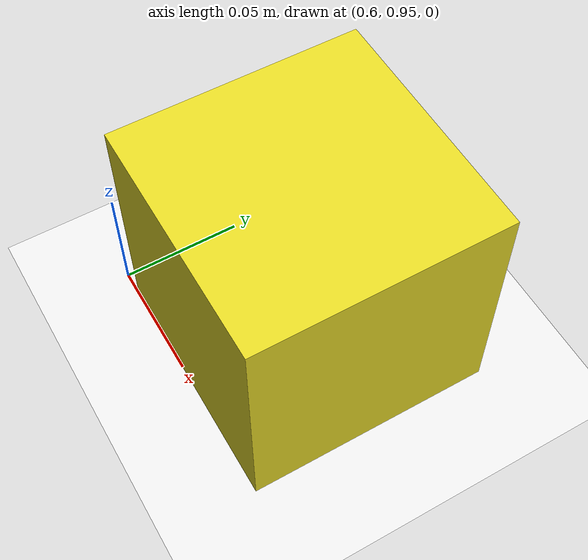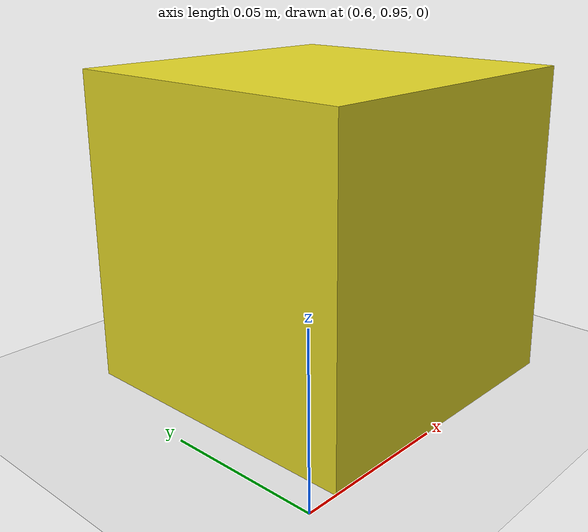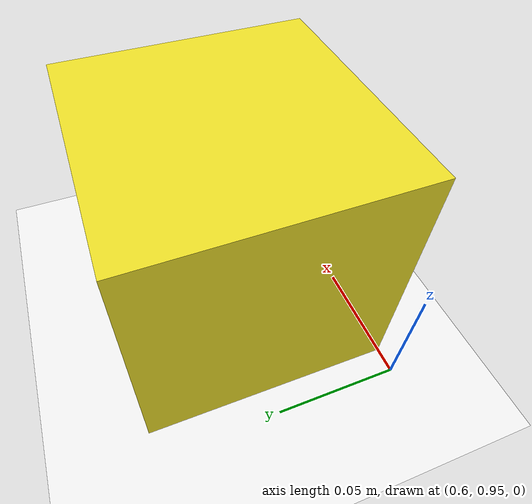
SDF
<?xml version="1.0" ?>
<sdf version="1.4">
  <world name="default">

    <plugin name="gazebo_link_attacher" filename="libgazebo_link_attacher.so"/>

    <!-- Gazebo ROS state plugin -->
    <plugin name="gazebo_ros_state" filename="libgazebo_ros_state.so">
      <ros>
        <namespace>/gazebo</namespace>
      </ros>
      <update_rate>50.0</update_rate>
    </plugin>

    <gravity>0 0 -9.8</gravity>

    <physics default="0" name="default_physics" type="ode">
      <max_step_size>0.01</max_step_size>
      <real_time_factor>1</real_time_factor>
      <real_time_update_rate>100</real_time_update_rate>
    </physics>

    <!-- Ground -->
    <model name="ground_plane">
      <static>true</static>
      <link name="link">
        <collision name="collision">
          <geometry>
            <plane>
              <normal>0 0 1</normal>
              <size>100 100</size>
            </plane>
          </geometry>
        </collision>

        <visual name="visual">
          <geometry>
            <plane>
              <normal>0 0 1</normal>
              <size>100 100</size>
            </plane>
          </geometry>
          <material>
            <script>
              <name>Gazebo/White</name>
              <uri>file://media/materials/scripts/gazebo.material</uri>
            </script>
          </material>
        </visual>
      </link>
    </model>

    <!-- Dynamic yellow cube (0.1m) -->
    <model name="grasp_cube">
      <static>false</static>
      <allow_auto_disable>false</allow_auto_disable>
      <!-- place it above ground so it doesn't interpenetrate -->
      <pose>0.66 1.0 0.05 0 0 0</pose>

      <link name="link">
        <inertial>
          <mass>0.1</mass>
          <!-- I = (1/6)*m*a^2 for a cube, a=0.1 -->
          <inertia>
            <ixx>0.0001666667</ixx>
            <ixy>0</ixy>
            <ixz>0</ixz>
            <iyy>0.0001666667</iyy>
            <iyz>0</iyz>
            <izz>0.0001666667</izz>
          </inertia>
        </inertial>

        <collision name="collision">
          <geometry>
            <box>
              <size>0.1 0.1 0.1</size>
            </box>
          </geometry>
          <surface>
            <friction>
              <ode>
                <!-- reasonable friction; huge values can feel “stuck” -->
                <mu>1.0</mu>
                <mu2>1.0</mu2>
              </ode>
            </friction>
          </surface>
        </collision>

        <visual name="visual">
          <geometry>
            <box>
              <size>0.1 0.1 0.1</size>
            </box>
          </geometry>
          <material>
            <script>
              <uri>file://media/materials/scripts/gazebo.material</uri>
              <name>Gazebo/Yellow</name>
            </script>
            <ambient>1 1 0 1</ambient>
            <diffuse>1 1 0 1</diffuse>
            <emissive>0 0 0 1</emissive>
          </material>
        </visual>
      </link>
    </model>

    <!-- Sun -->
    <include>
      <uri>model://sun</uri>
    </include>

  </world>
</sdf>
